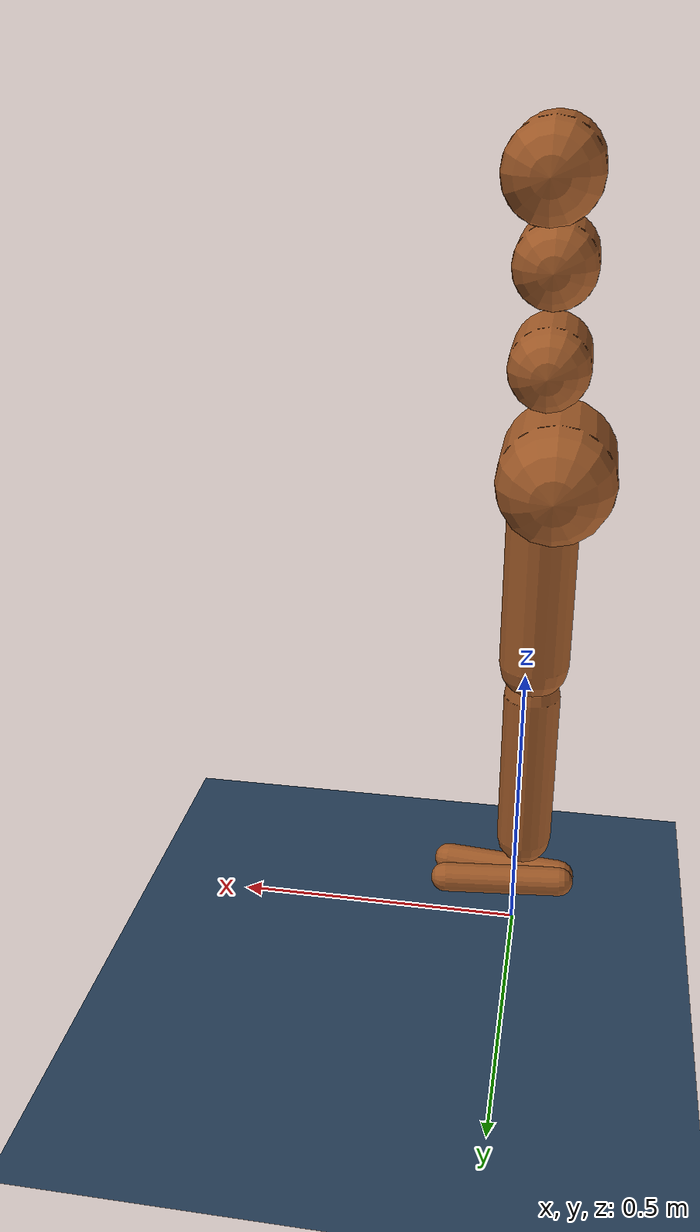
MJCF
<mujoco model="right_leg_only">

  <option timestep="0.005"/>

  <asset>
    <!-- Skybox: gradient from blue-grey at top to black at bottom -->
    <texture type="skybox" builtin="gradient"
             rgb1=".3 .5 .7" rgb2="0 0 0"
             width="32" height="512"/>

    <!-- Skin texture: a flat tan colour with a white cross mark
         type="cube" means it wraps around 3D shapes in all 6 directions -->
    <texture name="body" type="cube" builtin="flat" mark="cross"
             width="128" height="128"
             rgb1="0.8 0.6 0.4" rgb2="0.8 0.6 0.4"
             markrgb="1 1 1"/>

    <!-- Material that applies the skin texture.
         texuniform="true" = stretch the texture to fit evenly.
         rgba=  overall tint on top of the texture. -->
    <material name="body" texture="body" texuniform="true"
              rgba="0.8 0.6 .4 1"/>

    <!-- Checkerboard floor texture -->
    <texture name="grid" type="2d" builtin="checker"
             width="512" height="512"
             rgb1=".1 .2 .3" rgb2=".2 .3 .4"/>
    <material name="grid" texture="grid"
              texrepeat="1 1" texuniform="true" reflectance=".2"/>
  </asset>

  <default>

    <!-- All motors are clamped to the range [-1, 1].
         The actual torque is gear * control_signal. -->
    <motor ctrlrange="-1 1" ctrllimited="true"/>

    <!-- ── "body" class: base settings for ALL body geoms ── -->
    <default class="body">

      <geom type="capsule" condim="1" friction=".7"
            solimp=".9 .99 .003" solref=".015 1"
            material="body" group="1"/>

      <!-- ── Thigh geom defaults ── -->
      <!-- size here = capsule radius = 6cm. No fromto here because the
           thigh capsule endpoints are defined directly on the geom tag. -->
      <default class="thigh">
        <geom size=".06"/>
      </default>

      <!-- ── Shin geom defaults ── -->
      <!-- fromto="0 0 0  0 0 -.3" draws the capsule from the shin body's
           local origin straight down 30cm along Z.
           size=".049" = radius ~5cm (slightly thinner than the thigh). -->
      <default class="shin">
        <geom fromto="0 0 0  0 0 -.3" size=".049"/>
      </default>

      <!-- ── Foot geom defaults ── -->
      <default class="foot">
        <geom size=".027"/>
        <default class="foot1">
          <!-- fromto: start at x=-.07 (behind), end at x=+.14 (ahead)
               y offsets -.01 / -.03 tilt the capsule inward (medial side) -->
          <geom fromto="-.07 -.01 0  .14 -.03 0"/>
        </default>
        <default class="foot2">
          <!-- Mirror of foot1 on the other (lateral) side.
               y offsets +.01 / +.03 tilt outward. -->
          <geom fromto="-.07 .01 0  .14 .03 0"/>
        </default>
      </default>

      <joint type="hinge" damping=".2" stiffness="1" armature=".01"
             limited="true" solimplimit="0 .99 .01"/>

      <!-- ── "joint_big" class: high-torque joints (hips, spine) ── -->
      <!-- Overrides damping and stiffness to be much stronger.
           These joints carry the body weight and need more resistance. -->
      <default class="joint_big">
        <joint damping="5" stiffness="10"/>

        <!-- hip_x: side-to-side leg abduction (spreading legs apart).
             range="-30 10" limits abduction to 30° outward, 10° inward. -->
        <default class="hip_x">
          <joint range="-30 10"/>
        </default>

        <!-- hip_z: internal/external rotation (twisting the whole leg).
             range="-60 35" allows more external than internal rotation. -->
        <default class="hip_z">
          <joint range="-60 35"/>
        </default>

        <default class="hip_y">
          <joint axis="0 1 0" range="-150 20"/>
        </default>

        <!-- joint_big_stiff: even stiffer version for the spine -->
        <default class="joint_big_stiff">
          <joint stiffness="20"/>
        </default>
      </default>

      <default class="knee">
        <joint pos="0 0 .02" axis="0 -1 0" range="-160 2"/>
      </default>

      <!-- ── Ankle defaults ── -->
      <default class="ankle">
        <joint range="-50 50"/>

        <default class="ankle_y">
          <joint pos="0 0 .08" axis="0 1 0" stiffness="6"/>
        </default>

        <default class="ankle_x">
          <joint pos="0 0 .04" stiffness="3"/>
        </default>
      </default>

    </default><!-- end class="body" -->
  </default>

  <worldbody>

    <geom name="floor" size="0 0 .05" type="plane"
          material="grid" condim="3"/>

    <!-- ── LIGHTS ──
         Two lights so the leg is well-lit from any angle. -->

    <!-- Spotlight: tracks the torso's centre of mass, aimed from the side. -->
    <light name="spotlight" mode="targetbodycom" target="torso"
           diffuse=".8 .8 .8" specular="0.3 0.3 0.3"
           pos="0 -6 4" cutoff="30"/>

    <!-- Top fill light: follows the torso's centre of mass from above. -->
    <light name="top" pos="0 0 2" mode="trackcom"/>

    <body name="torso" pos="0 0 1.282" childclass="body">

      <!-- Camera that follows behind the model -->
      <camera name="back" pos="-3 0 1" xyaxes="0 -1 0 1 0 2" mode="trackcom"/>

      <freejoint name="root"/>

      <geom name="torso" fromto="0 -.07 0  0 .07 0" size=".07"/>

      <!-- Upper waist capsule: same shape, shifted 12cm down (z=-.12).
           Slightly smaller (size=".06") to taper the waist. -->
      <geom name="waist_upper" fromto="-.01 -.06 -.12  -.01 .06 -.12" size=".06"/>

      <body name="waist_lower" pos="-.01 0 -.26">

        <!-- Lower waist capsule — same shape as upper waist. -->
        <geom name="waist_lower" fromto="0 -.06 0  0 .06 0" size=".06"/>

        <joint name="abdomen_z" pos="0 0 .065" axis="0 0 1"
               range="-45 45" class="joint_big_stiff"/>

        <joint name="abdomen_y" pos="0 0 .065" axis="0 1 0"
               range="-75 30" class="joint_big"/>

        <body name="pelvis" pos="0 0 -.165">

          <joint name="abdomen_x" pos="0 0 .1" axis="1 0 0"
                 range="-35 35" class="joint_big"/>

          <geom name="butt" fromto="-.02 -.07 0  -.02 .07 0" size=".09"/>

          <body name="thigh_right" pos="0 -.1 -.04">

            <joint name="hip_x_right" axis="1 0 0" class="hip_x"/>

            <joint name="hip_z_right" axis="0 0 1" class="hip_z"/>

            <joint name="hip_y_right" class="hip_y"/>

            <geom name="thigh_right" fromto="0 0 0  0 .01 -.34" class="thigh"/>

            <body name="shin_right" pos="0 .01 -.4">

              <joint name="knee_right" class="knee"/>

              <!-- Shin capsule: straight down 30cm.
                   class="shin" → fromto="0 0 0  0 0 -.3", size=".049".
                   Perfectly vertical — no angle here, the shin is straight. -->
              <geom name="shin_right" class="shin"/>

              <body name="foot_right" pos="0 0 -.39">

                <joint name="ankle_y_right" class="ankle_y"/>

                <joint name="ankle_x_right" class="ankle_x" axis="1 0 .5"/>

                <geom name="foot1_right" class="foot1"/>

                <geom name="foot2_right" class="foot2"/>

              </body><!-- end foot_right -->
            </body><!-- end shin_right -->
          </body><!-- end thigh_right -->
        </body><!-- end pelvis -->
      </body><!-- end waist_lower -->
    </body><!-- end torso -->
  </worldbody>

  <tendon>
    <fixed name="hamstring_right" limited="true" range="-0.3 2">
      <joint joint="hip_y_right"  coef=".5"/>
      <joint joint="knee_right"   coef="-.5"/>
    </fixed>
  </tendon>

  <actuator>
    <!-- Spine motors — stabilise the pelvis over the leg -->
    <motor name="abdomen_z" gear="40"  joint="abdomen_z"/>
    <motor name="abdomen_y" gear="40"  joint="abdomen_y"/>
    <motor name="abdomen_x" gear="40"  joint="abdomen_x"/>

    <!-- Hip motors — three axes of the ball-and-socket hip joint -->
    <motor name="hip_x_right" gear="40"  joint="hip_x_right"/>  <!-- abduction -->
    <motor name="hip_z_right" gear="40"  joint="hip_z_right"/>  <!-- rotation   -->
    <motor name="hip_y_right" gear="120" joint="hip_y_right"/>  <!-- swing       -->

    <!-- Knee motor — single hinge, high torque for stance phase -->
    <motor name="knee_right"  gear="80"  joint="knee_right"/>

    <!-- Ankle motors — low torque, fine balance control -->
    <motor name="ankle_y_right" gear="20" joint="ankle_y_right"/> <!-- up/down  -->
    <motor name="ankle_x_right" gear="20" joint="ankle_x_right"/> <!-- roll     -->
  </actuator>

  <keyframe>
    <key name="stand"
         qpos="0 0 1.282
               1 0 0 0
               0 0 0
               0 0 0 0 0 0"/>
    <!--      ↑ torso XYZ    ↑ quaternion (no rotation)
                              ↑ all spine and leg joints at 0° -->
  </keyframe>

</mujoco>
